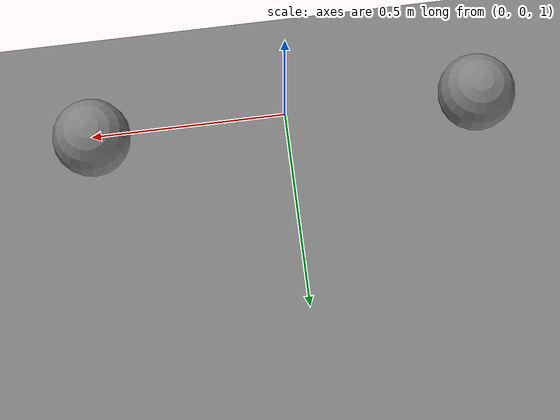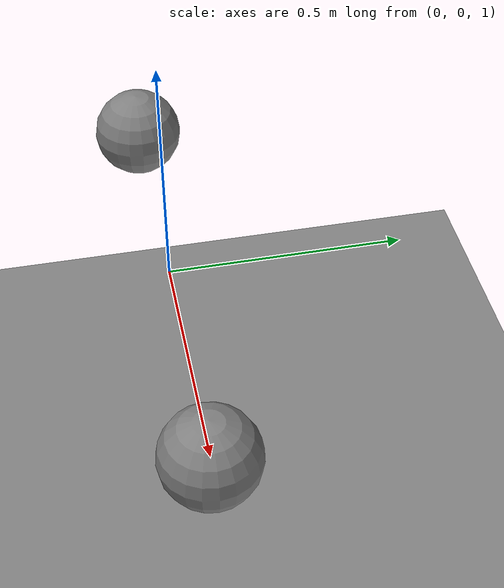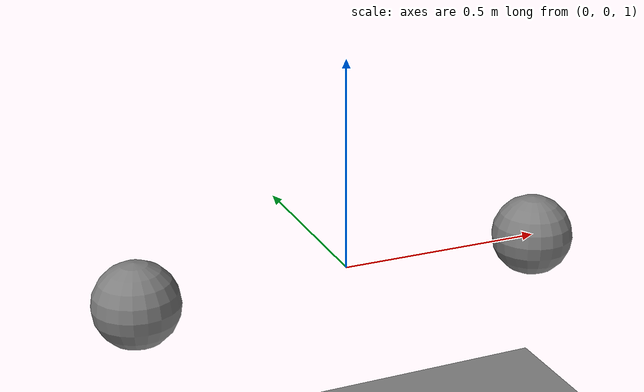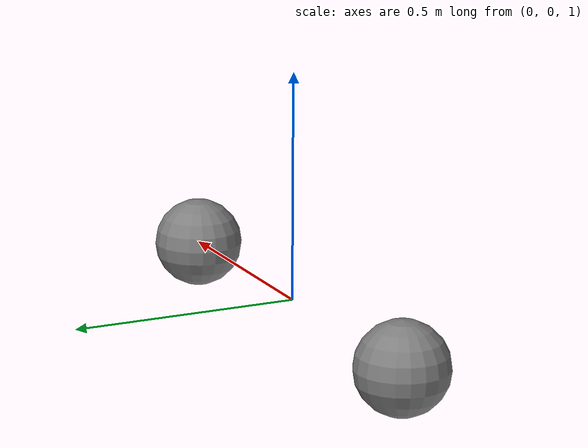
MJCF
<mujoco model="bitmask-basics">
  <option gravity="0 0 -9.81" timestep="0.002"/>
  <worldbody>
    <geom name="ground" type="plane" size="5 5 0.1"/>
    <body name="collider" pos="-0.5 0 1">
      <freejoint name="collider_free"/>
      <geom name="collider_geom" type="sphere" size="0.1" mass="1.0"/>
    </body>
    <body name="ghost" pos="0.5 0 1">
      <freejoint name="ghost_free"/>
      <geom name="ghost_geom" type="sphere" size="0.1" mass="1.0"
            contype="0" conaffinity="0"/>
    </body>
  </worldbody>
</mujoco>
